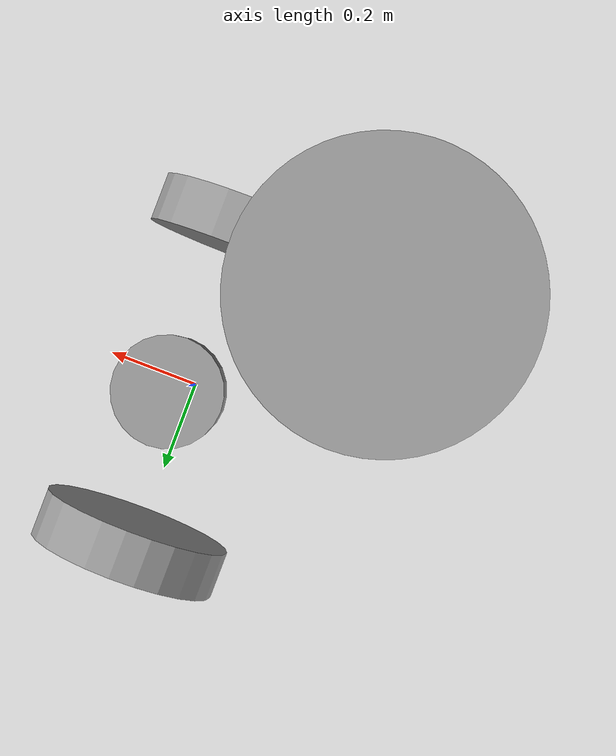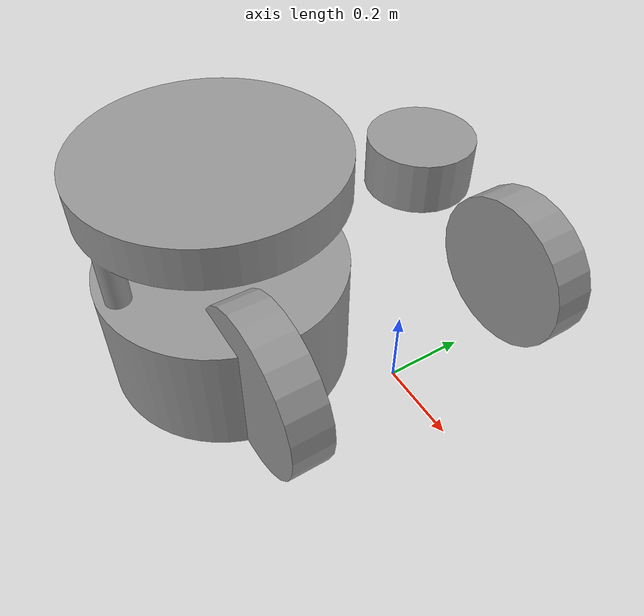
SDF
<?xml version='1.0'?>
<sdf version='1.7'>
  <model name='ifooddifbot_20211007'>
    <link name='link_0'>
      <inertial>
        <mass>1</mass>
        <inertia>
          <ixx>0.001</ixx>
          <ixy>0</ixy>
          <ixz>0</ixz>
          <iyy>0.001</iyy>
          <iyz>0</iyz>
          <izz>0.001</izz>
        </inertia>
        <pose>0 0 0 0 -0 0</pose>
      </inertial>
      <pose>-0 -0.35 0.2 -1.5708 0 0</pose>
      <gravity>1</gravity>
      <self_collide>0</self_collide>
      <kinematic>0</kinematic>
      <enable_wind>0</enable_wind>
      <visual name='visual'>
        <pose>0 0 0 0 -0 0</pose>
        <geometry>
          <cylinder>
            <radius>0.2</radius>
            <length>0.1</length>
          </cylinder>
        </geometry>
        <material>
          <lighting>1</lighting>
          <script>
            <uri>file://media/materials/scripts/gazebo.material</uri>
            <name>Gazebo/Grey</name>
          </script>
          <shader type='pixel'>
            <normal_map>__default__</normal_map>
          </shader>
          <ambient>0.3 0.3 0.3 1</ambient>
          <diffuse>0.7 0.7 0.7 1</diffuse>
          <specular>0.01 0.01 0.01 1</specular>
          <emissive>0 0 0 1</emissive>
        </material>
        <transparency>0</transparency>
        <cast_shadows>1</cast_shadows>
      </visual>
      <collision name='collision'>
        <laser_retro>0</laser_retro>
        <max_contacts>10</max_contacts>
        <pose>0 0 0 0 -0 0</pose>
        <geometry>
          <cylinder>
            <radius>0.2</radius>
            <length>0.1</length>
          </cylinder>
        </geometry>
        <surface>
          <friction>
            <ode>
              <mu>1</mu>
              <mu2>1</mu2>
              <fdir1>0 0 0</fdir1>
              <slip1>0</slip1>
              <slip2>0</slip2>
            </ode>
            <torsional>
              <coefficient>1</coefficient>
              <patch_radius>0</patch_radius>
              <surface_radius>0</surface_radius>
              <use_patch_radius>1</use_patch_radius>
              <ode>
                <slip>0</slip>
              </ode>
            </torsional>
          </friction>
          <bounce>
            <restitution_coefficient>0</restitution_coefficient>
            <threshold>1e+06</threshold>
          </bounce>
          <contact>
            <collide_without_contact>0</collide_without_contact>
            <collide_without_contact_bitmask>1</collide_without_contact_bitmask>
            <collide_bitmask>1</collide_bitmask>
            <ode>
              <soft_cfm>0</soft_cfm>
              <soft_erp>0.2</soft_erp>
              <kp>1e+13</kp>
              <kd>1</kd>
              <max_vel>0.01</max_vel>
              <min_depth>0</min_depth>
            </ode>
            <bullet>
              <split_impulse>1</split_impulse>
              <split_impulse_penetration_threshold>-0.01</split_impulse_penetration_threshold>
              <soft_cfm>0</soft_cfm>
              <soft_erp>0.2</soft_erp>
              <kp>1e+13</kp>
              <kd>1</kd>
            </bullet>
          </contact>
        </surface>
      </collision>
    </link>
    <link name='link_0_clone'>
      <inertial>
        <mass>1</mass>
        <inertia>
          <ixx>0.001</ixx>
          <ixy>0</ixy>
          <ixz>0</ixz>
          <iyy>0.001</iyy>
          <iyz>0</iyz>
          <izz>0.001</izz>
        </inertia>
        <pose>0 0 0 0 -0 0</pose>
      </inertial>
      <pose>-0 0.35 0.2 -1.5708 0 0</pose>
      <gravity>1</gravity>
      <self_collide>0</self_collide>
      <kinematic>0</kinematic>
      <enable_wind>0</enable_wind>
      <visual name='visual'>
        <pose>0 0 0 0 -0 0</pose>
        <geometry>
          <cylinder>
            <radius>0.2</radius>
            <length>0.1</length>
          </cylinder>
        </geometry>
        <material>
          <lighting>1</lighting>
          <script>
            <uri>file://media/materials/scripts/gazebo.material</uri>
            <name>Gazebo/Grey</name>
          </script>
          <shader type='pixel'>
            <normal_map>__default__</normal_map>
          </shader>
          <ambient>0.3 0.3 0.3 1</ambient>
          <diffuse>0.7 0.7 0.7 1</diffuse>
          <specular>0.01 0.01 0.01 1</specular>
          <emissive>0 0 0 1</emissive>
        </material>
        <transparency>0</transparency>
        <cast_shadows>1</cast_shadows>
      </visual>
      <collision name='collision'>
        <laser_retro>0</laser_retro>
        <max_contacts>10</max_contacts>
        <pose>0 0 0 0 -0 0</pose>
        <geometry>
          <cylinder>
            <radius>0.2</radius>
            <length>0.1</length>
          </cylinder>
        </geometry>
        <surface>
          <friction>
            <ode>
              <mu>1</mu>
              <mu2>1</mu2>
              <fdir1>0 0 0</fdir1>
              <slip1>0</slip1>
              <slip2>0</slip2>
            </ode>
            <torsional>
              <coefficient>1</coefficient>
              <patch_radius>0</patch_radius>
              <surface_radius>0</surface_radius>
              <use_patch_radius>1</use_patch_radius>
              <ode>
                <slip>0</slip>
              </ode>
            </torsional>
          </friction>
          <bounce>
            <restitution_coefficient>0</restitution_coefficient>
            <threshold>1e+06</threshold>
          </bounce>
          <contact>
            <collide_without_contact>0</collide_without_contact>
            <collide_without_contact_bitmask>1</collide_without_contact_bitmask>
            <collide_bitmask>1</collide_bitmask>
            <ode>
              <soft_cfm>0</soft_cfm>
              <soft_erp>0.2</soft_erp>
              <kp>1e+13</kp>
              <kd>1</kd>
              <max_vel>0.01</max_vel>
              <min_depth>0</min_depth>
            </ode>
            <bullet>
              <split_impulse>1</split_impulse>
              <split_impulse_penetration_threshold>-0.01</split_impulse_penetration_threshold>
              <soft_cfm>0</soft_cfm>
              <soft_erp>0.2</soft_erp>
              <kp>1e+13</kp>
              <kd>1</kd>
            </bullet>
          </contact>
        </surface>
      </collision>
    </link>
    <link name='link_2'>
      <inertial>
        <mass>1</mass>
        <inertia>
          <ixx>0.001</ixx>
          <ixy>0</ixy>
          <ixz>0</ixz>
          <iyy>0.001</iyy>
          <iyz>0</iyz>
          <izz>0.001</izz>
        </inertia>
        <pose>0 0 0 0 -0 0</pose>
      </inertial>
      <pose>0 0 0 0 -0 0</pose>
      <gravity>1</gravity>
      <self_collide>0</self_collide>
      <kinematic>0</kinematic>
      <enable_wind>0</enable_wind>
      <visual name='visual'>
        <pose>-0.3 -0.3 0 0 -0 0</pose>
        <geometry>
          <mesh>
            <uri>/home/sakurath/catkin_ws/src/my_robosim_project/meshes/base_link.stl</uri>
            <scale>1 1 1</scale>
          </mesh>
        </geometry>
        <material>
          <lighting>1</lighting>
          <script>
            <uri>file://media/materials/scripts/gazebo.material</uri>
            <name>Gazebo/Grey</name>
          </script>
          <shader type='pixel'>
            <normal_map>__default__</normal_map>
          </shader>
          <ambient>0.3 0.3 0.3 1</ambient>
          <diffuse>0.7 0.7 0.7 1</diffuse>
          <specular>0.01 0.01 0.01 1</specular>
          <emissive>0 0 0 1</emissive>
        </material>
        <transparency>0</transparency>
        <cast_shadows>1</cast_shadows>
      </visual>
      <collision name='collision'>
        <laser_retro>0</laser_retro>
        <max_contacts>10</max_contacts>
        <pose>-0.3 -0.3 0 0 -0 0</pose>
        <geometry>
          <mesh>
            <uri>/home/sakurath/catkin_ws/src/my_robosim_project/meshes/base_link.stl</uri>
            <scale>1 1 1</scale>
          </mesh>
        </geometry>
        <surface>
          <friction>
            <ode>
              <mu>1</mu>
              <mu2>1</mu2>
              <fdir1>0 0 0</fdir1>
              <slip1>0</slip1>
              <slip2>0</slip2>
            </ode>
            <torsional>
              <coefficient>1</coefficient>
              <patch_radius>0</patch_radius>
              <surface_radius>0</surface_radius>
              <use_patch_radius>1</use_patch_radius>
              <ode>
                <slip>0</slip>
              </ode>
            </torsional>
          </friction>
          <bounce>
            <restitution_coefficient>0</restitution_coefficient>
            <threshold>1e+06</threshold>
          </bounce>
          <contact>
            <collide_without_contact>0</collide_without_contact>
            <collide_without_contact_bitmask>1</collide_without_contact_bitmask>
            <collide_bitmask>1</collide_bitmask>
            <ode>
              <soft_cfm>0</soft_cfm>
              <soft_erp>0.2</soft_erp>
              <kp>1e+13</kp>
              <kd>1</kd>
              <max_vel>0.01</max_vel>
              <min_depth>0</min_depth>
            </ode>
            <bullet>
              <split_impulse>1</split_impulse>
              <split_impulse_penetration_threshold>-0.01</split_impulse_penetration_threshold>
              <soft_cfm>0</soft_cfm>
              <soft_erp>0.2</soft_erp>
              <kp>1e+13</kp>
              <kd>1</kd>
            </bullet>
          </contact>
        </surface>
      </collision>
    </link>
    <link name='link_3'>
      <inertial>
        <mass>1</mass>
        <inertia>
          <ixx>0.001</ixx>
          <ixy>0</ixy>
          <ixz>0</ixz>
          <iyy>0.001</iyy>
          <iyz>0</iyz>
          <izz>0.001</izz>
        </inertia>
        <pose>0 0 0 0 -0 0</pose>
      </inertial>
      <pose>-0 -0 0.65 0 -0 0</pose>
      <gravity>1</gravity>
      <self_collide>0</self_collide>
      <kinematic>0</kinematic>
      <enable_wind>0</enable_wind>
      <visual name='visual'>
        <pose>0 0 0 0 -0 0</pose>
        <geometry>
          <cylinder>
            <radius>0.1</radius>
            <length>0.1</length>
          </cylinder>
        </geometry>
        <material>
          <lighting>1</lighting>
          <script>
            <uri>file://media/materials/scripts/gazebo.material</uri>
            <name>Gazebo/Grey</name>
          </script>
          <shader type='pixel'>
            <normal_map>__default__</normal_map>
          </shader>
          <ambient>0.3 0.3 0.3 1</ambient>
          <diffuse>0.7 0.7 0.7 1</diffuse>
          <specular>0.01 0.01 0.01 1</specular>
          <emissive>0 0 0 1</emissive>
        </material>
        <transparency>0</transparency>
        <cast_shadows>1</cast_shadows>
      </visual>
      <collision name='collision'>
        <laser_retro>0</laser_retro>
        <max_contacts>10</max_contacts>
        <pose>0 0 0 0 -0 0</pose>
        <geometry>
          <cylinder>
            <radius>0.1</radius>
            <length>0.1</length>
          </cylinder>
        </geometry>
        <surface>
          <friction>
            <ode>
              <mu>1</mu>
              <mu2>1</mu2>
              <fdir1>0 0 0</fdir1>
              <slip1>0</slip1>
              <slip2>0</slip2>
            </ode>
            <torsional>
              <coefficient>1</coefficient>
              <patch_radius>0</patch_radius>
              <surface_radius>0</surface_radius>
              <use_patch_radius>1</use_patch_radius>
              <ode>
                <slip>0</slip>
              </ode>
            </torsional>
          </friction>
          <bounce>
            <restitution_coefficient>0</restitution_coefficient>
            <threshold>1e+06</threshold>
          </bounce>
          <contact>
            <collide_without_contact>0</collide_without_contact>
            <collide_without_contact_bitmask>1</collide_without_contact_bitmask>
            <collide_bitmask>1</collide_bitmask>
            <ode>
              <soft_cfm>0</soft_cfm>
              <soft_erp>0.2</soft_erp>
              <kp>1e+13</kp>
              <kd>1</kd>
              <max_vel>0.01</max_vel>
              <min_depth>0</min_depth>
            </ode>
            <bullet>
              <split_impulse>1</split_impulse>
              <split_impulse_penetration_threshold>-0.01</split_impulse_penetration_threshold>
              <soft_cfm>0</soft_cfm>
              <soft_erp>0.2</soft_erp>
              <kp>1e+13</kp>
              <kd>1</kd>
            </bullet>
          </contact>
        </surface>
      </collision>
    </link>
    <joint name='link_2_JOINT_0' type='revolute'>
      <parent>link_2</parent>
      <child>link_0</child>
      <pose>0 0 0 0 -0 0</pose>
      <axis>
        <xyz>0 0 1</xyz>
        <limit>
          <lower>-1.79769e+308</lower>
          <upper>1.79769e+308</upper>
          <effort>-1</effort>
          <velocity>-1</velocity>
        </limit>
        <dynamics>
          <spring_reference>0</spring_reference>
          <spring_stiffness>0</spring_stiffness>
          <damping>0</damping>
          <friction>0</friction>
        </dynamics>
      </axis>
      <physics>
        <ode>
          <limit>
            <cfm>0</cfm>
            <erp>0.2</erp>
          </limit>
          <suspension>
            <cfm>0</cfm>
            <erp>0.2</erp>
          </suspension>
        </ode>
      </physics>
    </joint>
    <joint name='link_2_JOINT_1' type='revolute'>
      <parent>link_2</parent>
      <child>link_0_clone</child>
      <pose>0 0 0 0 -0 0</pose>
      <axis>
        <xyz>0 0 1</xyz>
        <limit>
          <lower>-1.79769e+308</lower>
          <upper>1.79769e+308</upper>
          <effort>-1</effort>
          <velocity>-1</velocity>
        </limit>
        <dynamics>
          <spring_reference>0</spring_reference>
          <spring_stiffness>0</spring_stiffness>
          <damping>0</damping>
          <friction>0</friction>
        </dynamics>
      </axis>
      <physics>
        <ode>
          <limit>
            <cfm>0</cfm>
            <erp>0.2</erp>
          </limit>
          <suspension>
            <cfm>0</cfm>
            <erp>0.2</erp>
          </suspension>
        </ode>
      </physics>
    </joint>
    <joint name='link_2_JOINT_2' type='fixed'>
      <parent>link_2</parent>
      <child>link_3</child>
      <pose>0 0 0 0 -0 0</pose>
      <physics>
        <ode>
          <limit>
            <cfm>0</cfm>
            <erp>0.2</erp>
          </limit>
          <suspension>
            <cfm>0</cfm>
            <erp>0.2</erp>
          </suspension>
        </ode>
      </physics>
    </joint>
    <static>0</static>
    <allow_auto_disable>1</allow_auto_disable>
  </model>
</sdf>
